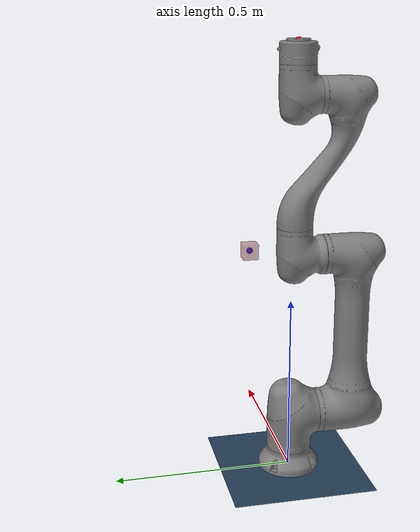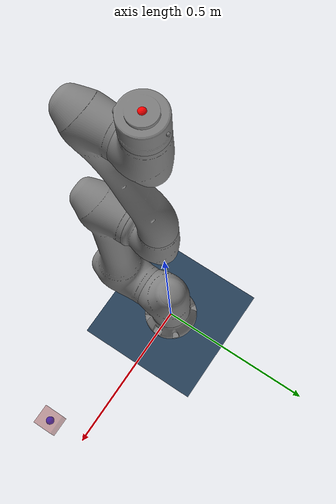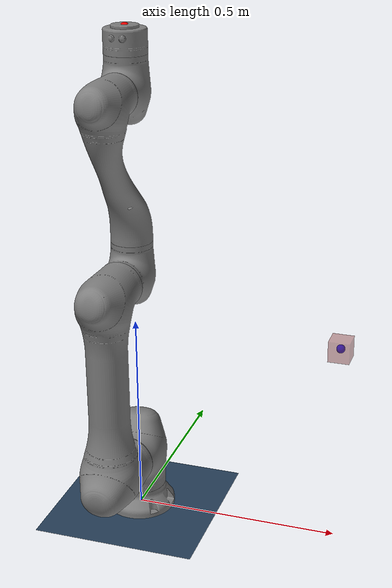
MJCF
<mujoco model="Svaya SR-L6 scene">
  <include file="svaya_aiu_6_v3.xml"/>

  <statistic center="0.3 0 0.4" extent="1"/>

  <visual>
    <headlight diffuse="0.6 0.6 0.6" ambient="0.3 0.3 0.3" specular="0 0 0"/>
    <rgba haze="0.15 0.25 0.35 1"/>
    <global azimuth="120" elevation="-20"/>
  </visual>

  <asset>
    <texture type="skybox" builtin="gradient" rgb1="0.3 0.5 0.7" rgb2="0 0 0" width="512" height="3072"/>
    <texture type="2d" name="groundplane" builtin="checker" mark="edge" rgb1="0.2 0.3 0.4" rgb2="0.1 0.2 0.3"
      markrgb="0.8 0.8 0.8" width="300" height="300"/>
    <material name="groundplane" texture="groundplane" texuniform="true" texrepeat="5 5" reflectance="0.2"/>
  </asset>

  <worldbody>
    <light pos="0 0 1.5" dir="0 0 -1" directional="true"/>
    <geom name="floor" size="0.2 0.2 0.05" type="plane" material="groundplane"/>

    <body name="target" pos="0.5 0 0.5" quat="1 0 0 0" mocap="true">
      <geom type="box" size=".025 .025 .025" contype="0" conaffinity="0" rgba=".6 .3 .3 .5"/>
      <site type="sphere" size="0.01" rgba="0 0 1 1" group="1"/>
    </body>

  </worldbody>
</mujoco>

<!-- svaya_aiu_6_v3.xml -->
<mujoco model="svaya">
  <compiler angle="radian"/>
  <asset>
    <mesh name="aiu_link0_v3" file="aiu_link0_v3.stl"/>
    <mesh name="aiu_link1_v3" file="aiu_link1_v3.stl"/>
    <mesh name="aiu_link2_v3" file="aiu_link2_v3.stl"/>
    <mesh name="aiu_link3_v3" file="aiu_link3_v3.stl"/>
    <mesh name="aiu_link4_v3" file="aiu_link4_v3.stl"/>
    <mesh name="aiu_link5_v3" file="aiu_link5_v3.stl"/>
    <mesh name="aiu_link6_v3" file="aiu_link6_v3.stl"/>
  </asset>
  <worldbody>
    <geom type="mesh" mesh="aiu_link0_v3"/>
    <body name="link1" pos="0 0 0.06">
      <inertial pos="-0.000181559 -0.00545733 0.0681549" quat="0.715779 0.0924481 -0.102175 0.684597" mass="6.16454" diaginertia="0.0178973 0.0169876 0.0128687"/>
      <joint name="joint1" pos="0 0 0" axis="0 0 1" range="-3.11018 3.11018"/>
      <geom type="mesh" mesh="aiu_link1_v3"/>
      <body name="link2" pos="0 -0.075 0.102" quat="0.5 -0.5 -0.5 -0.5">
        <inertial pos="0.189946 5.57256e-05 -0.0748324" quat="0.494307 0.506018 0.501998 0.497598" mass="11.7695" diaginertia="0.562934 0.555245 0.0319158"/>
        <joint name="joint2" pos="0 0 0" axis="0 0 1" range="-3.11018 3.11018"/>
        <geom type="mesh" mesh="aiu_link2_v3"/>
        <body name="link3" pos="0.46826 0 -0.01113" quat="0.707107 0 0 0.707107">
          <inertial pos="0.000151158 -0.0221171 0.0699053" quat="0.84665 0.525587 0.0392982 -0.0734735" mass="3.03523" diaginertia="0.00616287 0.00604653 0.00433072"/>
          <joint name="joint3" pos="0 0 0" axis="0 0 1" range="-3.11018 3.11018"/>
          <geom type="mesh" mesh="aiu_link3_v3"/>
          <body name="link4" pos="0 -0.0797 0.07913" quat="0.707107 0.707107 0 0">
            <inertial pos="-0.000162947 -0.101392 0.292677" quat="0.986471 0.163873 0.00061687 -0.00443691" mass="3.89711" diaginertia="0.052704 0.0502142 0.00770959"/>
            <joint name="joint4" pos="0 0 0" axis="0 0 1" range="-3.11018 3.11018"/>
            <geom type="mesh" mesh="aiu_link4_v3"/>
            <body name="link5" pos="0 -0.05811 0.35171" quat="0.707107 -0.707107 0 0">
              <inertial pos="0.000164059 -0.0240047 0.0534406" quat="0.541652 0.423182 -0.456908 0.564592" mass="2.79655" diaginertia="0.00518481 0.00496627 0.00352013"/>
              <joint name="joint5" pos="0 0 0" axis="0 0 1" range="-3.11018 3.11018"/>
              <geom type="mesh" mesh="aiu_link5_v3"/>
              <body name="link6" pos="0 -0.0797 0.05811" quat="0.707107 0.707107 0 0">
                <inertial pos="-0.000180877 0.000124945 0.0289094" quat="0.470412 0.53059 -0.471833 0.523986" mass="0.611633" diaginertia="0.000874169 0.000656863 0.000650186"/>
                <joint name="joint6" pos="0 0 0" axis="0 0 1" range="-3.11018 3.11018"/>
                <geom type="mesh" mesh="aiu_link6_v3"/>
                  <site name="attachment_site" size="0.01" pos="0 0.0 0.057" quat="1 0 0 0" rgba="1 0 0 1" group="1"/>
              </body>
            </body>
          </body>
        </body>
      </body>
    </body>
  </worldbody>
    <actuator>

        <motor name="joint1" joint="joint1"/>
        <motor name="joint2" joint="joint2"/>
        <motor name="joint3" joint="joint3"/>
        <motor name="joint4" joint="joint4"/>
        <motor name="joint5" joint="joint5"/>
        <motor name="joint6" joint="joint6"/>

    </actuator>

</mujoco>
